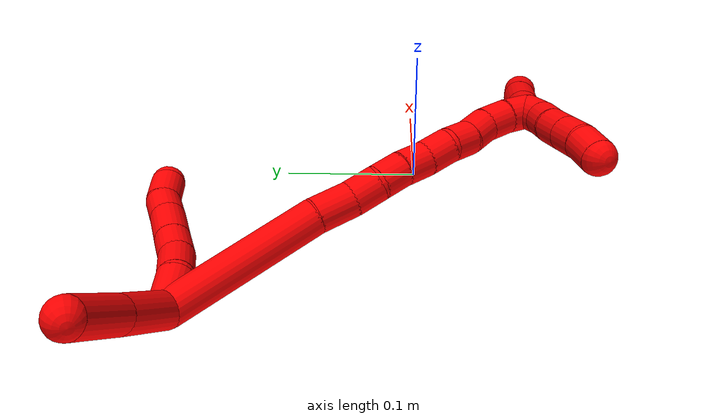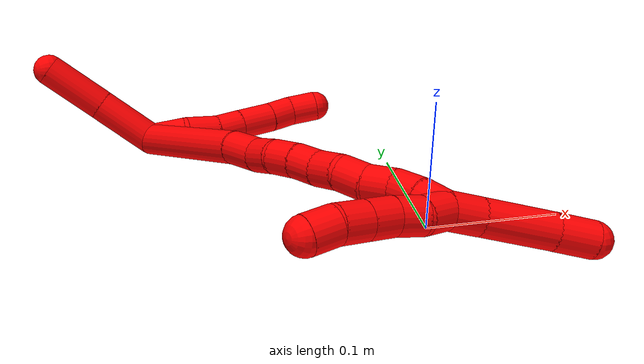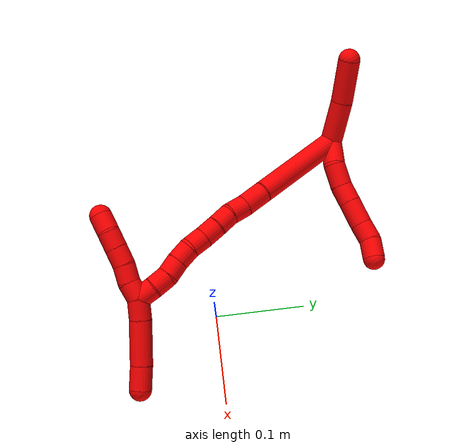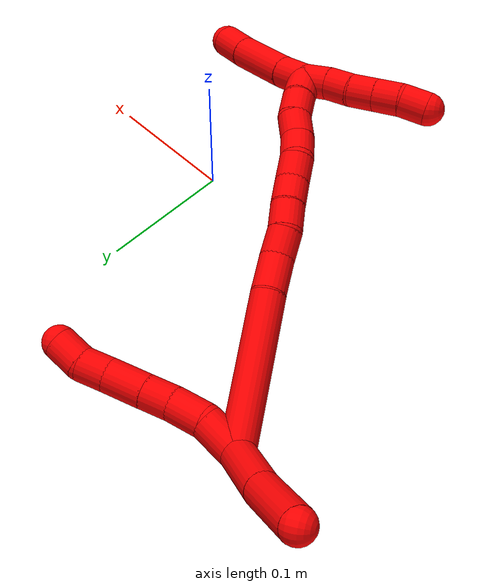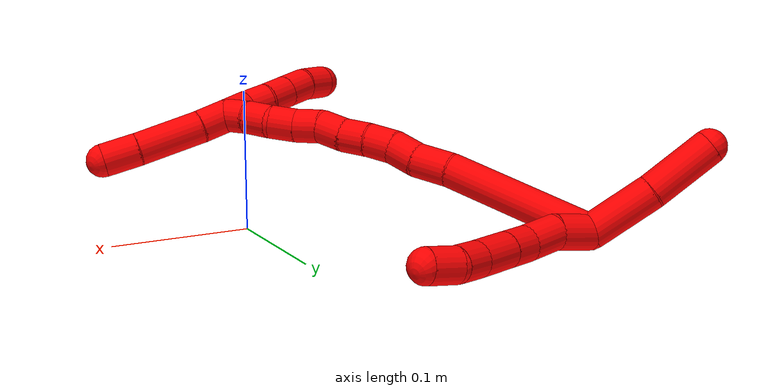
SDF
<sdf version="1.7">
 <world name="default">
  <model name="2">
   <static>0</static>
   <link name="2">
    <collision name="collision-cylinder-e_1_2_8">
     <pose>0.006531 -0.004017 -0.01247 2.82993 0.462411 1.96464</pose>
     <geometry><cylinder><radius>0.0125</radius><length>0.029278</length></cylinder></geometry>
     <surface>
      <friction><ode><mu>1.16</mu><mu2>1.16</mu2><slip1>0</slip1><slip2>0</slip2></ode></friction>
      <contact><ode><kp>1e+06</kp><kd>1</kd><max_vel>0</max_vel><min_depth>0.001</min_depth></ode></contact>
     </surface>
    </collision>
    <visual name="visual-cylinder-e_1_2_8">
     <pose>0.006531 -0.004017 -0.01247 2.82993 0.462411 1.96464</pose>
     <geometry><cylinder><radius>0.0125</radius><length>0.029278</length></cylinder></geometry>
     <material><ambient>1 0 0 1</ambient></material>
    </visual>
    <collision name="collision-cylinder-e_2_8_9">
     <pose>0.015182 -0.010682 -0.037951 2.94086 0.158421 1.33503</pose>
     <geometry><cylinder><radius>0.0125</radius><length>0.026891</length></cylinder></geometry>
     <surface>
      <friction><ode><mu>1.16</mu><mu2>1.16</mu2><slip1>0</slip1><slip2>0</slip2></ode></friction>
      <contact><ode><kp>1e+06</kp><kd>1</kd><max_vel>0</max_vel><min_depth>0.001</min_depth></ode></contact>
     </surface>
    </collision>
    <visual name="visual-cylinder-e_2_8_9">
     <pose>0.015182 -0.010682 -0.037951 2.94086 0.158421 1.33503</pose>
     <geometry><cylinder><radius>0.0125</radius><length>0.026891</length></cylinder></geometry>
     <material><ambient>1 0 0 1</ambient></material>
    </visual>
    <collision name="collision-cylinder-e_3_9_10">
     <pose>0.019702 -0.013467 -0.06142 3.1284 0.225431 3.02521</pose>
     <geometry><cylinder><radius>0.0125</radius><length>0.021462</length></cylinder></geometry>
     <surface>
      <friction><ode><mu>1.16</mu><mu2>1.16</mu2><slip1>0</slip1><slip2>0</slip2></ode></friction>
      <contact><ode><kp>1e+06</kp><kd>1</kd><max_vel>0</max_vel><min_depth>0.001</min_depth></ode></contact>
     </surface>
    </collision>
    <visual name="visual-cylinder-e_3_9_10">
     <pose>0.019702 -0.013467 -0.06142 3.1284 0.225431 3.02521</pose>
     <geometry><cylinder><radius>0.0125</radius><length>0.021462</length></cylinder></geometry>
     <material><ambient>1 0 0 1</ambient></material>
    </visual>
    <collision name="collision-cylinder-e_4_10_11">
     <pose>0.025307 -0.014021 -0.086003 3.11219 0.22317 2.88063</pose>
     <geometry><cylinder><radius>0.0125</radius><length>0.02898</length></cylinder></geometry>
     <surface>
      <friction><ode><mu>1.16</mu><mu2>1.16</mu2><slip1>0</slip1><slip2>0</slip2></ode></friction>
      <contact><ode><kp>1e+06</kp><kd>1</kd><max_vel>0</max_vel><min_depth>0.001</min_depth></ode></contact>
     </surface>
    </collision>
    <visual name="visual-cylinder-e_4_10_11">
     <pose>0.025307 -0.014021 -0.086003 3.11219 0.22317 2.88063</pose>
     <geometry><cylinder><radius>0.0125</radius><length>0.02898</length></cylinder></geometry>
     <material><ambient>1 0 0 1</ambient></material>
    </visual>
    <collision name="collision-cylinder-e_5_11_12">
     <pose>0.031146 -0.014115 -0.110226 -3.10977 0.25478 -2.89437</pose>
     <geometry><cylinder><radius>0.0125</radius><length>0.020881</length></cylinder></geometry>
     <surface>
      <friction><ode><mu>1.16</mu><mu2>1.16</mu2><slip1>0</slip1><slip2>0</slip2></ode></friction>
      <contact><ode><kp>1e+06</kp><kd>1</kd><max_vel>0</max_vel><min_depth>0.001</min_depth></ode></contact>
     </surface>
    </collision>
    <visual name="visual-cylinder-e_5_11_12">
     <pose>0.031146 -0.014115 -0.110226 -3.10977 0.25478 -2.89437</pose>
     <geometry><cylinder><radius>0.0125</radius><length>0.020881</length></cylinder></geometry>
     <material><ambient>1 0 0 1</ambient></material>
    </visual>
    <collision name="collision-cylinder-e_6_12_6">
     <pose>0.03852 -0.016549 -0.130151 2.8682 0.435018 2.02814</pose>
     <geometry><cylinder><radius>0.0125</radius><length>0.022509</length></cylinder></geometry>
     <surface>
      <friction><ode><mu>1.16</mu><mu2>1.16</mu2><slip1>0</slip1><slip2>0</slip2></ode></friction>
      <contact><ode><kp>1e+06</kp><kd>1</kd><max_vel>0</max_vel><min_depth>0.001</min_depth></ode></contact>
     </surface>
    </collision>
    <visual name="visual-cylinder-e_6_12_6">
     <pose>0.03852 -0.016549 -0.130151 2.8682 0.435018 2.02814</pose>
     <geometry><cylinder><radius>0.0125</radius><length>0.022509</length></cylinder></geometry>
     <material><ambient>1 0 0 1</ambient></material>
    </visual>
    <collision name="collision-cylinder-e_1_2_13">
     <pose>0.003749 0.018354 0.016473 -0.83934 0.150842 -0.067405</pose>
     <geometry><cylinder><radius>0.0125</radius><length>0.049891</length></cylinder></geometry>
     <surface>
      <friction><ode><mu>1.16</mu><mu2>1.16</mu2><slip1>0</slip1><slip2>0</slip2></ode></friction>
      <contact><ode><kp>1e+06</kp><kd>1</kd><max_vel>0</max_vel><min_depth>0.001</min_depth></ode></contact>
     </surface>
    </collision>
    <visual name="visual-cylinder-e_1_2_13">
     <pose>0.003749 0.018354 0.016473 -0.83934 0.150842 -0.067405</pose>
     <geometry><cylinder><radius>0.0125</radius><length>0.049891</length></cylinder></geometry>
     <material><ambient>1 0 0 1</ambient></material>
    </visual>
    <collision name="collision-cylinder-e_2_13_5">
     <pose>0.012822 0.053581 0.050685 -0.760422 0.214163 -0.085868</pose>
     <geometry><cylinder><radius>0.0125</radius><length>0.050109</length></cylinder></geometry>
     <surface>
      <friction><ode><mu>1.16</mu><mu2>1.16</mu2><slip1>0</slip1><slip2>0</slip2></ode></friction>
      <contact><ode><kp>1e+06</kp><kd>1</kd><max_vel>0</max_vel><min_depth>0.001</min_depth></ode></contact>
     </surface>
    </collision>
    <visual name="visual-cylinder-e_2_13_5">
     <pose>0.012822 0.053581 0.050685 -0.760422 0.214163 -0.085868</pose>
     <geometry><cylinder><radius>0.0125</radius><length>0.050109</length></cylinder></geometry>
     <material><ambient>1 0 0 1</ambient></material>
    </visual>
    <collision name="collision-cylinder-e_1_2_14">
     <pose>0.036271 -0.041296 -0.0047 1.68411 0.717525 0.795402</pose>
     <geometry><cylinder><radius>0.0125</radius><length>0.110327</length></cylinder></geometry>
     <surface>
      <friction><ode><mu>1.16</mu><mu2>1.16</mu2><slip1>0</slip1><slip2>0</slip2></ode></friction>
      <contact><ode><kp>1e+06</kp><kd>1</kd><max_vel>0</max_vel><min_depth>0.001</min_depth></ode></contact>
     </surface>
    </collision>
    <visual name="visual-cylinder-e_1_2_14">
     <pose>0.036271 -0.041296 -0.0047 1.68411 0.717525 0.795402</pose>
     <geometry><cylinder><radius>0.0125</radius><length>0.110327</length></cylinder></geometry>
     <material><ambient>1 0 0 1</ambient></material>
    </visual>
    <collision name="collision-cylinder-e_2_14_15">
     <pose>0.080153 -0.094109 -0.010641 1.67818 0.581234 0.643007</pose>
     <geometry><cylinder><radius>0.0125</radius><length>0.027722</length></cylinder></geometry>
     <surface>
      <friction><ode><mu>1.16</mu><mu2>1.16</mu2><slip1>0</slip1><slip2>0</slip2></ode></friction>
      <contact><ode><kp>1e+06</kp><kd>1</kd><max_vel>0</max_vel><min_depth>0.001</min_depth></ode></contact>
     </surface>
    </collision>
    <visual name="visual-cylinder-e_2_14_15">
     <pose>0.080153 -0.094109 -0.010641 1.67818 0.581234 0.643007</pose>
     <geometry><cylinder><radius>0.0125</radius><length>0.027722</length></cylinder></geometry>
     <material><ambient>1 0 0 1</ambient></material>
    </visual>
    <collision name="collision-cylinder-e_3_15_16">
     <pose>0.094988 -0.113367 -0.011697 1.54679 0.750805 0.734572</pose>
     <geometry><cylinder><radius>0.0125</radius><length>0.021179</length></cylinder></geometry>
     <surface>
      <friction><ode><mu>1.16</mu><mu2>1.16</mu2><slip1>0</slip1><slip2>0</slip2></ode></friction>
      <contact><ode><kp>1e+06</kp><kd>1</kd><max_vel>0</max_vel><min_depth>0.001</min_depth></ode></contact>
     </surface>
    </collision>
    <visual name="visual-cylinder-e_3_15_16">
     <pose>0.094988 -0.113367 -0.011697 1.54679 0.750805 0.734572</pose>
     <geometry><cylinder><radius>0.0125</radius><length>0.021179</length></cylinder></geometry>
     <material><ambient>1 0 0 1</ambient></material>
    </visual>
    <collision name="collision-cylinder-e_4_16_17">
     <pose>0.108145 -0.129203 -0.013434 1.80409 0.619399 0.769519</pose>
     <geometry><cylinder><radius>0.0125</radius><length>0.02044</length></cylinder></geometry>
     <surface>
      <friction><ode><mu>1.16</mu><mu2>1.16</mu2><slip1>0</slip1><slip2>0</slip2></ode></friction>
      <contact><ode><kp>1e+06</kp><kd>1</kd><max_vel>0</max_vel><min_depth>0.001</min_depth></ode></contact>
     </surface>
    </collision>
    <visual name="visual-cylinder-e_4_16_17">
     <pose>0.108145 -0.129203 -0.013434 1.80409 0.619399 0.769519</pose>
     <geometry><cylinder><radius>0.0125</radius><length>0.02044</length></cylinder></geometry>
     <material><ambient>1 0 0 1</ambient></material>
    </visual>
    <collision name="collision-cylinder-e_5_17_18">
     <pose>0.119069 -0.145881 -0.01698 1.75754 0.519148 0.620206</pose>
     <geometry><cylinder><radius>0.0125</radius><length>0.020118</length></cylinder></geometry>
     <surface>
      <friction><ode><mu>1.16</mu><mu2>1.16</mu2><slip1>0</slip1><slip2>0</slip2></ode></friction>
      <contact><ode><kp>1e+06</kp><kd>1</kd><max_vel>0</max_vel><min_depth>0.001</min_depth></ode></contact>
     </surface>
    </collision>
    <visual name="visual-cylinder-e_5_17_18">
     <pose>0.119069 -0.145881 -0.01698 1.75754 0.519148 0.620206</pose>
     <geometry><cylinder><radius>0.0125</radius><length>0.020118</length></cylinder></geometry>
     <material><ambient>1 0 0 1</ambient></material>
    </visual>
    <collision name="collision-cylinder-e_6_18_19">
     <pose>0.130246 -0.162336 -0.019601 1.69707 0.66215 0.743926</pose>
     <geometry><cylinder><radius>0.0125</radius><length>0.020126</length></cylinder></geometry>
     <surface>
      <friction><ode><mu>1.16</mu><mu2>1.16</mu2><slip1>0</slip1><slip2>0</slip2></ode></friction>
      <contact><ode><kp>1e+06</kp><kd>1</kd><max_vel>0</max_vel><min_depth>0.001</min_depth></ode></contact>
     </surface>
    </collision>
    <visual name="visual-cylinder-e_6_18_19">
     <pose>0.130246 -0.162336 -0.019601 1.69707 0.66215 0.743926</pose>
     <geometry><cylinder><radius>0.0125</radius><length>0.020126</length></cylinder></geometry>
     <material><ambient>1 0 0 1</ambient></material>
    </visual>
    <collision name="collision-cylinder-e_7_19_20">
     <pose>0.140399 -0.178953 -0.02353 1.89405 0.406149 0.557392</pose>
     <geometry><cylinder><radius>0.0125</radius><length>0.020078</length></cylinder></geometry>
     <surface>
      <friction><ode><mu>1.16</mu><mu2>1.16</mu2><slip1>0</slip1><slip2>0</slip2></ode></friction>
      <contact><ode><kp>1e+06</kp><kd>1</kd><max_vel>0</max_vel><min_depth>0.001</min_depth></ode></contact>
     </surface>
    </collision>
    <visual name="visual-cylinder-e_7_19_20">
     <pose>0.140399 -0.178953 -0.02353 1.89405 0.406149 0.557392</pose>
     <geometry><cylinder><radius>0.0125</radius><length>0.020078</length></cylinder></geometry>
     <material><ambient>1 0 0 1</ambient></material>
    </visual>
    <collision name="collision-cylinder-e_8_20_21">
     <pose>0.149667 -0.195181 -0.03046 2.06176 0.558458 0.892455</pose>
     <geometry><cylinder><radius>0.0125</radius><length>0.020011</length></cylinder></geometry>
     <surface>
      <friction><ode><mu>1.16</mu><mu2>1.16</mu2><slip1>0</slip1><slip2>0</slip2></ode></friction>
      <contact><ode><kp>1e+06</kp><kd>1</kd><max_vel>0</max_vel><min_depth>0.001</min_depth></ode></contact>
     </surface>
    </collision>
    <visual name="visual-cylinder-e_8_20_21">
     <pose>0.149667 -0.195181 -0.03046 2.06176 0.558458 0.892455</pose>
     <geometry><cylinder><radius>0.0125</radius><length>0.020011</length></cylinder></geometry>
     <material><ambient>1 0 0 1</ambient></material>
    </visual>
    <collision name="collision-cylinder-e_9_21_22">
     <pose>0.159846 -0.211284 -0.03584 1.72949 0.509541 0.592848</pose>
     <geometry><cylinder><radius>0.0125</radius><length>0.02</length></cylinder></geometry>
     <surface>
      <friction><ode><mu>1.16</mu><mu2>1.16</mu2><slip1>0</slip1><slip2>0</slip2></ode></friction>
      <contact><ode><kp>1e+06</kp><kd>1</kd><max_vel>0</max_vel><min_depth>0.001</min_depth></ode></contact>
     </surface>
    </collision>
    <visual name="visual-cylinder-e_9_21_22">
     <pose>0.159846 -0.211284 -0.03584 1.72949 0.509541 0.592848</pose>
     <geometry><cylinder><radius>0.0125</radius><length>0.02</length></cylinder></geometry>
     <material><ambient>1 0 0 1</ambient></material>
    </visual>
    <collision name="collision-cylinder-e_10_22_1">
     <pose>0.168594 -0.229082 -0.038104 1.66691 0.397401 0.43635</pose>
     <geometry><cylinder><radius>0.0125</radius><length>0.02</length></cylinder></geometry>
     <surface>
      <friction><ode><mu>1.16</mu><mu2>1.16</mu2><slip1>0</slip1><slip2>0</slip2></ode></friction>
      <contact><ode><kp>1e+06</kp><kd>1</kd><max_vel>0</max_vel><min_depth>0.001</min_depth></ode></contact>
     </surface>
    </collision>
    <visual name="visual-cylinder-e_10_22_1">
     <pose>0.168594 -0.229082 -0.038104 1.66691 0.397401 0.43635</pose>
     <geometry><cylinder><radius>0.0125</radius><length>0.02</length></cylinder></geometry>
     <material><ambient>1 0 0 1</ambient></material>
    </visual>
    <collision name="collision-cylinder-e_1_1_23">
     <pose>0.172031 -0.238261 -0.028999 2e-05 -0.043437 -0</pose>
     <geometry><cylinder><radius>0.0125</radius><length>0.02</length></cylinder></geometry>
     <surface>
      <friction><ode><mu>1.16</mu><mu2>1.16</mu2><slip1>0</slip1><slip2>0</slip2></ode></friction>
      <contact><ode><kp>1e+06</kp><kd>1</kd><max_vel>0</max_vel><min_depth>0.001</min_depth></ode></contact>
     </surface>
    </collision>
    <visual name="visual-cylinder-e_1_1_23">
     <pose>0.172031 -0.238261 -0.028999 2e-05 -0.043437 -0</pose>
     <geometry><cylinder><radius>0.0125</radius><length>0.02</length></cylinder></geometry>
     <material><ambient>1 0 0 1</ambient></material>
    </visual>
    <collision name="collision-cylinder-e_2_23_24">
     <pose>0.170681 -0.235833 -0.009351 -0.246346 -0.091689 0.011359</pose>
     <geometry><cylinder><radius>0.0125</radius><length>0.02</length></cylinder></geometry>
     <surface>
      <friction><ode><mu>1.16</mu><mu2>1.16</mu2><slip1>0</slip1><slip2>0</slip2></ode></friction>
      <contact><ode><kp>1e+06</kp><kd>1</kd><max_vel>0</max_vel><min_depth>0.001</min_depth></ode></contact>
     </surface>
    </collision>
    <visual name="visual-cylinder-e_2_23_24">
     <pose>0.170681 -0.235833 -0.009351 -0.246346 -0.091689 0.011359</pose>
     <geometry><cylinder><radius>0.0125</radius><length>0.02</length></cylinder></geometry>
     <material><ambient>1 0 0 1</ambient></material>
    </visual>
    <collision name="collision-cylinder-e_3_24_25">
     <pose>0.169148 -0.232534 0.01025 -0.087305 -0.061793 0.0027</pose>
     <geometry><cylinder><radius>0.0125</radius><length>0.02</length></cylinder></geometry>
     <surface>
      <friction><ode><mu>1.16</mu><mu2>1.16</mu2><slip1>0</slip1><slip2>0</slip2></ode></friction>
      <contact><ode><kp>1e+06</kp><kd>1</kd><max_vel>0</max_vel><min_depth>0.001</min_depth></ode></contact>
     </surface>
    </collision>
    <visual name="visual-cylinder-e_3_24_25">
     <pose>0.169148 -0.232534 0.01025 -0.087305 -0.061793 0.0027</pose>
     <geometry><cylinder><radius>0.0125</radius><length>0.02</length></cylinder></geometry>
     <material><ambient>1 0 0 1</ambient></material>
    </visual>
    <collision name="collision-cylinder-e_4_25_26">
     <pose>0.167911 -0.2308 0.030136 -0.086695 -0.061976 0.002689</pose>
     <geometry><cylinder><radius>0.0125</radius><length>0.02</length></cylinder></geometry>
     <surface>
      <friction><ode><mu>1.16</mu><mu2>1.16</mu2><slip1>0</slip1><slip2>0</slip2></ode></friction>
      <contact><ode><kp>1e+06</kp><kd>1</kd><max_vel>0</max_vel><min_depth>0.001</min_depth></ode></contact>
     </surface>
    </collision>
    <visual name="visual-cylinder-e_4_25_26">
     <pose>0.167911 -0.2308 0.030136 -0.086695 -0.061976 0.002689</pose>
     <geometry><cylinder><radius>0.0125</radius><length>0.02</length></cylinder></geometry>
     <material><ambient>1 0 0 1</ambient></material>
    </visual>
    <collision name="collision-cylinder-e_5_26_4">
     <pose>0.164828 -0.229949 0.049771 0.001442 -0.24892 -0.00018</pose>
     <geometry><cylinder><radius>0.0125</radius><length>0.02</length></cylinder></geometry>
     <surface>
      <friction><ode><mu>1.16</mu><mu2>1.16</mu2><slip1>0</slip1><slip2>0</slip2></ode></friction>
      <contact><ode><kp>1e+06</kp><kd>1</kd><max_vel>0</max_vel><min_depth>0.001</min_depth></ode></contact>
     </surface>
    </collision>
    <visual name="visual-cylinder-e_5_26_4">
     <pose>0.164828 -0.229949 0.049771 0.001442 -0.24892 -0.00018</pose>
     <geometry><cylinder><radius>0.0125</radius><length>0.02</length></cylinder></geometry>
     <material><ambient>1 0 0 1</ambient></material>
    </visual>
    <collision name="collision-cylinder-e_1_1_27">
     <pose>0.173037 -0.243385 -0.049363 2.6828 0.049427 0.21093</pose>
     <geometry><cylinder><radius>0.0125</radius><length>0.023169</length></cylinder></geometry>
     <surface>
      <friction><ode><mu>1.16</mu><mu2>1.16</mu2><slip1>0</slip1><slip2>0</slip2></ode></friction>
      <contact><ode><kp>1e+06</kp><kd>1</kd><max_vel>0</max_vel><min_depth>0.001</min_depth></ode></contact>
     </surface>
    </collision>
    <visual name="visual-cylinder-e_1_1_27">
     <pose>0.173037 -0.243385 -0.049363 2.6828 0.049427 0.21093</pose>
     <geometry><cylinder><radius>0.0125</radius><length>0.023169</length></cylinder></geometry>
     <material><ambient>1 0 0 1</ambient></material>
    </visual>
    <collision name="collision-cylinder-e_2_27_28">
     <pose>0.176143 -0.260874 -0.081297 2.62089 0.101595 0.377159</pose>
     <geometry><cylinder><radius>0.0125</radius><length>0.049965</length></cylinder></geometry>
     <surface>
      <friction><ode><mu>1.16</mu><mu2>1.16</mu2><slip1>0</slip1><slip2>0</slip2></ode></friction>
      <contact><ode><kp>1e+06</kp><kd>1</kd><max_vel>0</max_vel><min_depth>0.001</min_depth></ode></contact>
     </surface>
    </collision>
    <visual name="visual-cylinder-e_2_27_28">
     <pose>0.176143 -0.260874 -0.081297 2.62089 0.101595 0.377159</pose>
     <geometry><cylinder><radius>0.0125</radius><length>0.049965</length></cylinder></geometry>
     <material><ambient>1 0 0 1</ambient></material>
    </visual>
    <collision name="collision-cylinder-e_3_28_3">
     <pose>0.18054 -0.280501 -0.114002 2.56408 0.139158 0.460872</pose>
     <geometry><cylinder><radius>0.0125</radius><length>0.026865</length></cylinder></geometry>
     <surface>
      <friction><ode><mu>1.16</mu><mu2>1.16</mu2><slip1>0</slip1><slip2>0</slip2></ode></friction>
      <contact><ode><kp>1e+06</kp><kd>1</kd><max_vel>0</max_vel><min_depth>0.001</min_depth></ode></contact>
     </surface>
    </collision>
    <visual name="visual-cylinder-e_3_28_3">
     <pose>0.18054 -0.280501 -0.114002 2.56408 0.139158 0.460872</pose>
     <geometry><cylinder><radius>0.0125</radius><length>0.026865</length></cylinder></geometry>
     <material><ambient>1 0 0 1</ambient></material>
    </visual>
    <collision name="collision-sphere-3">
     <pose>0.182404 -0.287763 -0.125148 0 -0 0</pose>
     <geometry><sphere><radius>0.0125</radius></sphere></geometry>
     <surface>
      <friction><ode><mu>1.16</mu><mu2>1.16</mu2><slip1>0</slip1><slip2>0</slip2></ode></friction>
      <contact><ode><kp>1e+06</kp><kd>1</kd><max_vel>0</max_vel><min_depth>0.001</min_depth></ode></contact>
     </surface>
    </collision>
    <visual name="visual-sphere-3">
     <pose>0.182404 -0.287763 -0.125148 0 -0 0</pose>
     <geometry><sphere><radius>0.0125</radius></sphere></geometry>
     <material><ambient>1 0 0 1</ambient></material>
    </visual>
    <collision name="collision-sphere-28">
     <pose>0.178677 -0.273238 -0.102857 0 -0 0</pose>
     <geometry><sphere><radius>0.0125</radius></sphere></geometry>
     <surface>
      <friction><ode><mu>1.16</mu><mu2>1.16</mu2><slip1>0</slip1><slip2>0</slip2></ode></friction>
      <contact><ode><kp>1e+06</kp><kd>1</kd><max_vel>0</max_vel><min_depth>0.001</min_depth></ode></contact>
     </surface>
    </collision>
    <visual name="visual-sphere-28">
     <pose>0.178677 -0.273238 -0.102857 0 -0 0</pose>
     <geometry><sphere><radius>0.0125</radius></sphere></geometry>
     <material><ambient>1 0 0 1</ambient></material>
    </visual>
    <collision name="collision-sphere-27">
     <pose>0.17361 -0.248509 -0.059737 0 -0 0</pose>
     <geometry><sphere><radius>0.0125</radius></sphere></geometry>
     <surface>
      <friction><ode><mu>1.16</mu><mu2>1.16</mu2><slip1>0</slip1><slip2>0</slip2></ode></friction>
      <contact><ode><kp>1e+06</kp><kd>1</kd><max_vel>0</max_vel><min_depth>0.001</min_depth></ode></contact>
     </surface>
    </collision>
    <visual name="visual-sphere-27">
     <pose>0.17361 -0.248509 -0.059737 0 -0 0</pose>
     <geometry><sphere><radius>0.0125</radius></sphere></geometry>
     <material><ambient>1 0 0 1</ambient></material>
    </visual>
    <collision name="collision-sphere-4">
     <pose>0.162364 -0.229963 0.059463 0 -0 0</pose>
     <geometry><sphere><radius>0.0125</radius></sphere></geometry>
     <surface>
      <friction><ode><mu>1.16</mu><mu2>1.16</mu2><slip1>0</slip1><slip2>0</slip2></ode></friction>
      <contact><ode><kp>1e+06</kp><kd>1</kd><max_vel>0</max_vel><min_depth>0.001</min_depth></ode></contact>
     </surface>
    </collision>
    <visual name="visual-sphere-4">
     <pose>0.162364 -0.229963 0.059463 0 -0 0</pose>
     <geometry><sphere><radius>0.0125</radius></sphere></geometry>
     <material><ambient>1 0 0 1</ambient></material>
    </visual>
    <collision name="collision-sphere-26">
     <pose>0.167291 -0.229935 0.040079 0 -0 0</pose>
     <geometry><sphere><radius>0.0125</radius></sphere></geometry>
     <surface>
      <friction><ode><mu>1.16</mu><mu2>1.16</mu2><slip1>0</slip1><slip2>0</slip2></ode></friction>
      <contact><ode><kp>1e+06</kp><kd>1</kd><max_vel>0</max_vel><min_depth>0.001</min_depth></ode></contact>
     </surface>
    </collision>
    <visual name="visual-sphere-26">
     <pose>0.167291 -0.229935 0.040079 0 -0 0</pose>
     <geometry><sphere><radius>0.0125</radius></sphere></geometry>
     <material><ambient>1 0 0 1</ambient></material>
    </visual>
    <collision name="collision-sphere-25">
     <pose>0.16853 -0.231664 0.020193 0 -0 0</pose>
     <geometry><sphere><radius>0.0125</radius></sphere></geometry>
     <surface>
      <friction><ode><mu>1.16</mu><mu2>1.16</mu2><slip1>0</slip1><slip2>0</slip2></ode></friction>
      <contact><ode><kp>1e+06</kp><kd>1</kd><max_vel>0</max_vel><min_depth>0.001</min_depth></ode></contact>
     </surface>
    </collision>
    <visual name="visual-sphere-25">
     <pose>0.16853 -0.231664 0.020193 0 -0 0</pose>
     <geometry><sphere><radius>0.0125</radius></sphere></geometry>
     <material><ambient>1 0 0 1</ambient></material>
    </visual>
    <collision name="collision-sphere-24">
     <pose>0.169765 -0.233404 0.000307 0 -0 0</pose>
     <geometry><sphere><radius>0.0125</radius></sphere></geometry>
     <surface>
      <friction><ode><mu>1.16</mu><mu2>1.16</mu2><slip1>0</slip1><slip2>0</slip2></ode></friction>
      <contact><ode><kp>1e+06</kp><kd>1</kd><max_vel>0</max_vel><min_depth>0.001</min_depth></ode></contact>
     </surface>
    </collision>
    <visual name="visual-sphere-24">
     <pose>0.169765 -0.233404 0.000307 0 -0 0</pose>
     <geometry><sphere><radius>0.0125</radius></sphere></geometry>
     <material><ambient>1 0 0 1</ambient></material>
    </visual>
    <collision name="collision-sphere-23">
     <pose>0.171596 -0.238261 -0.019008 0 -0 0</pose>
     <geometry><sphere><radius>0.0125</radius></sphere></geometry>
     <surface>
      <friction><ode><mu>1.16</mu><mu2>1.16</mu2><slip1>0</slip1><slip2>0</slip2></ode></friction>
      <contact><ode><kp>1e+06</kp><kd>1</kd><max_vel>0</max_vel><min_depth>0.001</min_depth></ode></contact>
     </surface>
    </collision>
    <visual name="visual-sphere-23">
     <pose>0.171596 -0.238261 -0.019008 0 -0 0</pose>
     <geometry><sphere><radius>0.0125</radius></sphere></geometry>
     <material><ambient>1 0 0 1</ambient></material>
    </visual>
    <collision name="collision-sphere-1">
     <pose>0.172465 -0.238261 -0.038989 0 -0 0</pose>
     <geometry><sphere><radius>0.0125</radius></sphere></geometry>
     <surface>
      <friction><ode><mu>1.16</mu><mu2>1.16</mu2><slip1>0</slip1><slip2>0</slip2></ode></friction>
      <contact><ode><kp>1e+06</kp><kd>1</kd><max_vel>0</max_vel><min_depth>0.001</min_depth></ode></contact>
     </surface>
    </collision>
    <visual name="visual-sphere-1">
     <pose>0.172465 -0.238261 -0.038989 0 -0 0</pose>
     <geometry><sphere><radius>0.0125</radius></sphere></geometry>
     <material><ambient>1 0 0 1</ambient></material>
    </visual>
    <collision name="collision-sphere-22">
     <pose>0.164724 -0.219904 -0.037219 0 -0 0</pose>
     <geometry><sphere><radius>0.0125</radius></sphere></geometry>
     <surface>
      <friction><ode><mu>1.16</mu><mu2>1.16</mu2><slip1>0</slip1><slip2>0</slip2></ode></friction>
      <contact><ode><kp>1e+06</kp><kd>1</kd><max_vel>0</max_vel><min_depth>0.001</min_depth></ode></contact>
     </surface>
    </collision>
    <visual name="visual-sphere-22">
     <pose>0.164724 -0.219904 -0.037219 0 -0 0</pose>
     <geometry><sphere><radius>0.0125</radius></sphere></geometry>
     <material><ambient>1 0 0 1</ambient></material>
    </visual>
    <collision name="collision-sphere-21">
     <pose>0.154969 -0.202664 -0.03446 0 -0 0</pose>
     <geometry><sphere><radius>0.0125</radius></sphere></geometry>
     <surface>
      <friction><ode><mu>1.16</mu><mu2>1.16</mu2><slip1>0</slip1><slip2>0</slip2></ode></friction>
      <contact><ode><kp>1e+06</kp><kd>1</kd><max_vel>0</max_vel><min_depth>0.001</min_depth></ode></contact>
     </surface>
    </collision>
    <visual name="visual-sphere-21">
     <pose>0.154969 -0.202664 -0.03446 0 -0 0</pose>
     <geometry><sphere><radius>0.0125</radius></sphere></geometry>
     <material><ambient>1 0 0 1</ambient></material>
    </visual>
    <collision name="collision-sphere-12">
     <pose>0.033777 -0.013793 -0.120324 0 -0 0</pose>
     <geometry><sphere><radius>0.0125</radius></sphere></geometry>
     <surface>
      <friction><ode><mu>1.16</mu><mu2>1.16</mu2><slip1>0</slip1><slip2>0</slip2></ode></friction>
      <contact><ode><kp>1e+06</kp><kd>1</kd><max_vel>0</max_vel><min_depth>0.001</min_depth></ode></contact>
     </surface>
    </collision>
    <visual name="visual-sphere-12">
     <pose>0.033777 -0.013793 -0.120324 0 -0 0</pose>
     <geometry><sphere><radius>0.0125</radius></sphere></geometry>
     <material><ambient>1 0 0 1</ambient></material>
    </visual>
    <collision name="collision-sphere-11">
     <pose>0.028514 -0.014436 -0.100127 0 -0 0</pose>
     <geometry><sphere><radius>0.0125</radius></sphere></geometry>
     <surface>
      <friction><ode><mu>1.16</mu><mu2>1.16</mu2><slip1>0</slip1><slip2>0</slip2></ode></friction>
      <contact><ode><kp>1e+06</kp><kd>1</kd><max_vel>0</max_vel><min_depth>0.001</min_depth></ode></contact>
     </surface>
    </collision>
    <visual name="visual-sphere-11">
     <pose>0.028514 -0.014436 -0.100127 0 -0 0</pose>
     <geometry><sphere><radius>0.0125</radius></sphere></geometry>
     <material><ambient>1 0 0 1</ambient></material>
    </visual>
    <collision name="collision-sphere-10">
     <pose>0.022101 -0.013605 -0.071878 0 -0 0</pose>
     <geometry><sphere><radius>0.0125</radius></sphere></geometry>
     <surface>
      <friction><ode><mu>1.16</mu><mu2>1.16</mu2><slip1>0</slip1><slip2>0</slip2></ode></friction>
      <contact><ode><kp>1e+06</kp><kd>1</kd><max_vel>0</max_vel><min_depth>0.001</min_depth></ode></contact>
     </surface>
    </collision>
    <visual name="visual-sphere-10">
     <pose>0.022101 -0.013605 -0.071878 0 -0 0</pose>
     <geometry><sphere><radius>0.0125</radius></sphere></geometry>
     <material><ambient>1 0 0 1</ambient></material>
    </visual>
    <collision name="collision-sphere-9">
     <pose>0.017303 -0.013329 -0.050961 0 -0 0</pose>
     <geometry><sphere><radius>0.0125</radius></sphere></geometry>
     <surface>
      <friction><ode><mu>1.16</mu><mu2>1.16</mu2><slip1>0</slip1><slip2>0</slip2></ode></friction>
      <contact><ode><kp>1e+06</kp><kd>1</kd><max_vel>0</max_vel><min_depth>0.001</min_depth></ode></contact>
     </surface>
    </collision>
    <visual name="visual-sphere-9">
     <pose>0.017303 -0.013329 -0.050961 0 -0 0</pose>
     <geometry><sphere><radius>0.0125</radius></sphere></geometry>
     <material><ambient>1 0 0 1</ambient></material>
    </visual>
    <collision name="collision-sphere-2">
     <geometry><sphere><radius>0.0125</radius></sphere></geometry>
     <surface>
      <friction><ode><mu>1.16</mu><mu2>1.16</mu2><slip1>0</slip1><slip2>0</slip2></ode></friction>
      <contact><ode><kp>1e+06</kp><kd>1</kd><max_vel>0</max_vel><min_depth>0.001</min_depth></ode></contact>
     </surface>
    </collision>
    <visual name="visual-sphere-2">
     <geometry><sphere><radius>0.0125</radius></sphere></geometry>
     <material><ambient>1 0 0 1</ambient></material>
    </visual>
    <collision name="collision-sphere-19">
     <pose>0.136433 -0.170209 -0.0206 0 -0 0</pose>
     <geometry><sphere><radius>0.0125</radius></sphere></geometry>
     <surface>
      <friction><ode><mu>1.16</mu><mu2>1.16</mu2><slip1>0</slip1><slip2>0</slip2></ode></friction>
      <contact><ode><kp>1e+06</kp><kd>1</kd><max_vel>0</max_vel><min_depth>0.001</min_depth></ode></contact>
     </surface>
    </collision>
    <visual name="visual-sphere-19">
     <pose>0.136433 -0.170209 -0.0206 0 -0 0</pose>
     <geometry><sphere><radius>0.0125</radius></sphere></geometry>
     <material><ambient>1 0 0 1</ambient></material>
    </visual>
    <collision name="collision-sphere-8">
     <pose>0.013061 -0.008035 -0.024941 0 -0 0</pose>
     <geometry><sphere><radius>0.0125</radius></sphere></geometry>
     <surface>
      <friction><ode><mu>1.16</mu><mu2>1.16</mu2><slip1>0</slip1><slip2>0</slip2></ode></friction>
      <contact><ode><kp>1e+06</kp><kd>1</kd><max_vel>0</max_vel><min_depth>0.001</min_depth></ode></contact>
     </surface>
    </collision>
    <visual name="visual-sphere-8">
     <pose>0.013061 -0.008035 -0.024941 0 -0 0</pose>
     <geometry><sphere><radius>0.0125</radius></sphere></geometry>
     <material><ambient>1 0 0 1</ambient></material>
    </visual>
    <collision name="collision-sphere-6">
     <pose>0.043263 -0.019304 -0.139978 0 -0 0</pose>
     <geometry><sphere><radius>0.0125</radius></sphere></geometry>
     <surface>
      <friction><ode><mu>1.16</mu><mu2>1.16</mu2><slip1>0</slip1><slip2>0</slip2></ode></friction>
      <contact><ode><kp>1e+06</kp><kd>1</kd><max_vel>0</max_vel><min_depth>0.001</min_depth></ode></contact>
     </surface>
    </collision>
    <visual name="visual-sphere-6">
     <pose>0.043263 -0.019304 -0.139978 0 -0 0</pose>
     <geometry><sphere><radius>0.0125</radius></sphere></geometry>
     <material><ambient>1 0 0 1</ambient></material>
    </visual>
    <collision name="collision-sphere-13">
     <pose>0.007497 0.036707 0.032946 0 -0 0</pose>
     <geometry><sphere><radius>0.0125</radius></sphere></geometry>
     <surface>
      <friction><ode><mu>1.16</mu><mu2>1.16</mu2><slip1>0</slip1><slip2>0</slip2></ode></friction>
      <contact><ode><kp>1e+06</kp><kd>1</kd><max_vel>0</max_vel><min_depth>0.001</min_depth></ode></contact>
     </surface>
    </collision>
    <visual name="visual-sphere-13">
     <pose>0.007497 0.036707 0.032946 0 -0 0</pose>
     <geometry><sphere><radius>0.0125</radius></sphere></geometry>
     <material><ambient>1 0 0 1</ambient></material>
    </visual>
    <collision name="collision-sphere-5">
     <pose>0.018147 0.070455 0.068423 0 -0 0</pose>
     <geometry><sphere><radius>0.0125</radius></sphere></geometry>
     <surface>
      <friction><ode><mu>1.16</mu><mu2>1.16</mu2><slip1>0</slip1><slip2>0</slip2></ode></friction>
      <contact><ode><kp>1e+06</kp><kd>1</kd><max_vel>0</max_vel><min_depth>0.001</min_depth></ode></contact>
     </surface>
    </collision>
    <visual name="visual-sphere-5">
     <pose>0.018147 0.070455 0.068423 0 -0 0</pose>
     <geometry><sphere><radius>0.0125</radius></sphere></geometry>
     <material><ambient>1 0 0 1</ambient></material>
    </visual>
    <collision name="collision-sphere-14">
     <pose>0.072542 -0.082591 -0.009399 0 -0 0</pose>
     <geometry><sphere><radius>0.0125</radius></sphere></geometry>
     <surface>
      <friction><ode><mu>1.16</mu><mu2>1.16</mu2><slip1>0</slip1><slip2>0</slip2></ode></friction>
      <contact><ode><kp>1e+06</kp><kd>1</kd><max_vel>0</max_vel><min_depth>0.001</min_depth></ode></contact>
     </surface>
    </collision>
    <visual name="visual-sphere-14">
     <pose>0.072542 -0.082591 -0.009399 0 -0 0</pose>
     <geometry><sphere><radius>0.0125</radius></sphere></geometry>
     <material><ambient>1 0 0 1</ambient></material>
    </visual>
    <collision name="collision-sphere-15">
     <pose>0.087763 -0.105627 -0.011882 0 -0 0</pose>
     <geometry><sphere><radius>0.0125</radius></sphere></geometry>
     <surface>
      <friction><ode><mu>1.16</mu><mu2>1.16</mu2><slip1>0</slip1><slip2>0</slip2></ode></friction>
      <contact><ode><kp>1e+06</kp><kd>1</kd><max_vel>0</max_vel><min_depth>0.001</min_depth></ode></contact>
     </surface>
    </collision>
    <visual name="visual-sphere-15">
     <pose>0.087763 -0.105627 -0.011882 0 -0 0</pose>
     <geometry><sphere><radius>0.0125</radius></sphere></geometry>
     <material><ambient>1 0 0 1</ambient></material>
    </visual>
    <collision name="collision-sphere-16">
     <pose>0.102212 -0.121108 -0.011511 0 -0 0</pose>
     <geometry><sphere><radius>0.0125</radius></sphere></geometry>
     <surface>
      <friction><ode><mu>1.16</mu><mu2>1.16</mu2><slip1>0</slip1><slip2>0</slip2></ode></friction>
      <contact><ode><kp>1e+06</kp><kd>1</kd><max_vel>0</max_vel><min_depth>0.001</min_depth></ode></contact>
     </surface>
    </collision>
    <visual name="visual-sphere-16">
     <pose>0.102212 -0.121108 -0.011511 0 -0 0</pose>
     <geometry><sphere><radius>0.0125</radius></sphere></geometry>
     <material><ambient>1 0 0 1</ambient></material>
    </visual>
    <collision name="collision-sphere-17">
     <pose>0.114078 -0.137299 -0.015358 0 -0 0</pose>
     <geometry><sphere><radius>0.0125</radius></sphere></geometry>
     <surface>
      <friction><ode><mu>1.16</mu><mu2>1.16</mu2><slip1>0</slip1><slip2>0</slip2></ode></friction>
      <contact><ode><kp>1e+06</kp><kd>1</kd><max_vel>0</max_vel><min_depth>0.001</min_depth></ode></contact>
     </surface>
    </collision>
    <visual name="visual-sphere-17">
     <pose>0.114078 -0.137299 -0.015358 0 -0 0</pose>
     <geometry><sphere><radius>0.0125</radius></sphere></geometry>
     <material><ambient>1 0 0 1</ambient></material>
    </visual>
    <collision name="collision-sphere-18">
     <pose>0.124059 -0.154462 -0.018601 0 -0 0</pose>
     <geometry><sphere><radius>0.0125</radius></sphere></geometry>
     <surface>
      <friction><ode><mu>1.16</mu><mu2>1.16</mu2><slip1>0</slip1><slip2>0</slip2></ode></friction>
      <contact><ode><kp>1e+06</kp><kd>1</kd><max_vel>0</max_vel><min_depth>0.001</min_depth></ode></contact>
     </surface>
    </collision>
    <visual name="visual-sphere-18">
     <pose>0.124059 -0.154462 -0.018601 0 -0 0</pose>
     <geometry><sphere><radius>0.0125</radius></sphere></geometry>
     <material><ambient>1 0 0 1</ambient></material>
    </visual>
    <collision name="collision-sphere-20">
     <pose>0.144365 -0.187698 -0.026459 0 -0 0</pose>
     <geometry><sphere><radius>0.0125</radius></sphere></geometry>
     <surface>
      <friction><ode><mu>1.16</mu><mu2>1.16</mu2><slip1>0</slip1><slip2>0</slip2></ode></friction>
      <contact><ode><kp>1e+06</kp><kd>1</kd><max_vel>0</max_vel><min_depth>0.001</min_depth></ode></contact>
     </surface>
    </collision>
    <visual name="visual-sphere-20">
     <pose>0.144365 -0.187698 -0.026459 0 -0 0</pose>
     <geometry><sphere><radius>0.0125</radius></sphere></geometry>
     <material><ambient>1 0 0 1</ambient></material>
    </visual>
    <inertial>
     <pose>0.088667 -0.109918 -0.025241 0 -0 0</pose>
     <mass>0.75</mass>
     <inertia><ixx>0.000211</ixx><ixy>0</ixy><ixz>0</ixz><iyy>0.000131</iyy><iyz>0</iyz><izz>-1e-05</izz></inertia>
    </inertial>
   </link>
   <pose>-0.187259 0.156813 0.011487 1.10251 -1.12191 -0.704843</pose>
  </model>
 </world>
</sdf>
